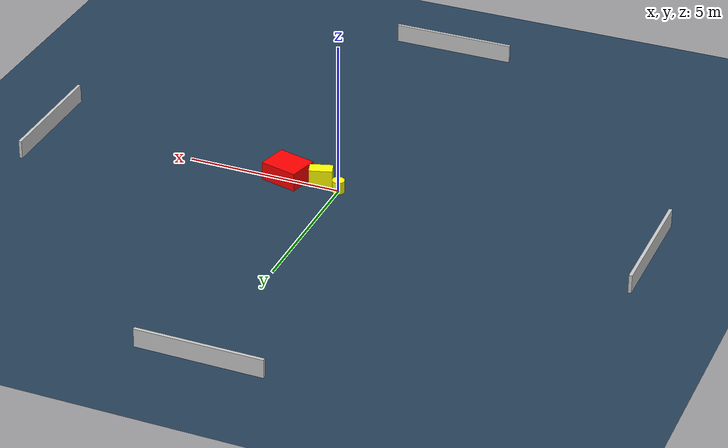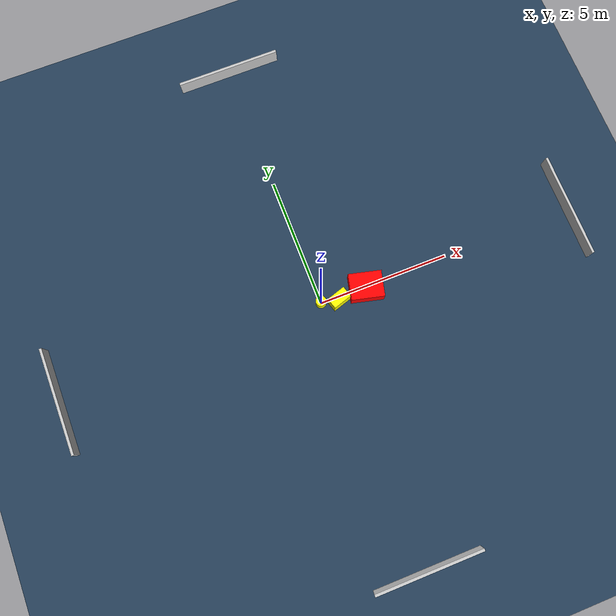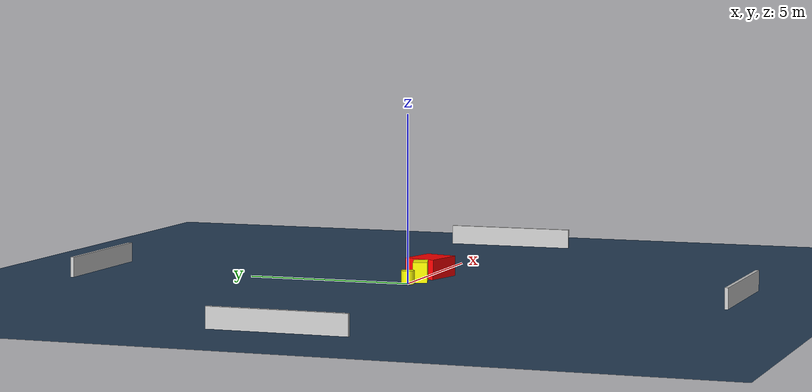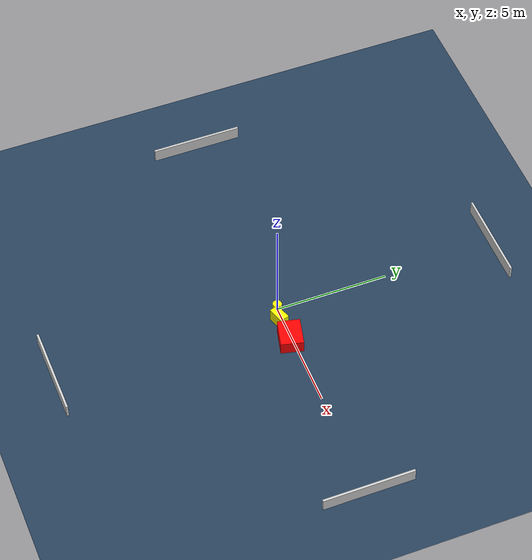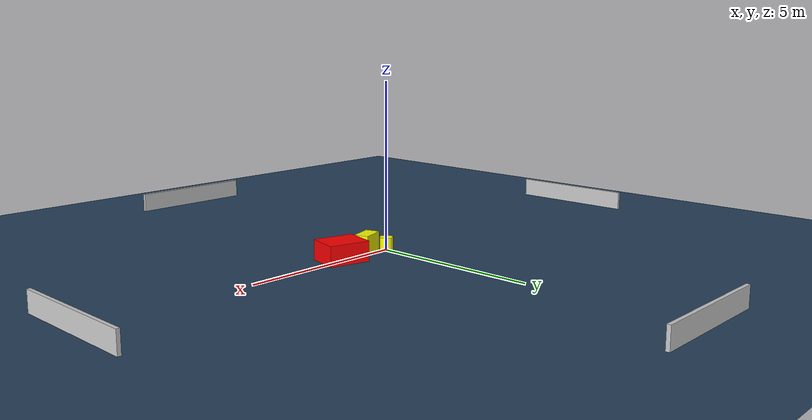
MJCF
<?xml version="1.0" ?>
<mujoco model="generated_environment">
  <option timestep="0.01" integrator="RK4" cone="elliptic"/>
  <default>
    <geom density="1"/>
  </default>
  <asset>
    <texture builtin="gradient" height="3072" name="skybox" rgb1="0.3 0.5 0.7" rgb2="0 0 0" type="skybox" width="512"/>
    <texture builtin="checker" height="300" name="groundplane" rgb1="0.2 0.3 0.4" rgb2="0.1 0.2 0.3" type="2d" width="300"/>
    <material name="groundplane" reflectance="0.2" texrepeat="5 5" texture="groundplane"/>
  </asset>
  <worldbody>
    <light dir="0 0 -1" directional="true" pos="0 0 1.5"/>
    <geom condim="3" friction="0.5 0.005 0.001" material="groundplane" name="floor" pos="0 0 0" size="0 0 0.05" type="plane"/>
    <body name="walls">
      <geom name="wall_1" condim="4" pos="-10.0 0.0 0.3" rgba="0.800000011920929 0.800000011920929 0.800000011920929 1.0" size="0.05 2.0 0.3" type="box"/>
      <geom name="wall_2" condim="4" pos="10.0 0.0 0.3" rgba="0.800000011920929 0.800000011920929 0.800000011920929 1.0" size="0.05 2.0 0.3" type="box"/>
      <geom name="wall_3" condim="4" pos="0.0 -10.0 0.3" rgba="0.800000011920929 0.800000011920929 0.800000011920929 1.0" size="2.0 0.05 0.3" type="box"/>
      <geom name="wall_4" condim="4" pos="0.0 10.0 0.3" rgba="0.800000011920929 0.800000011920929 0.800000011920929 1.0" size="2.0 0.05 0.3" type="box"/>
    </body>
    <body name="robot">
      <joint name="joint_x" type="slide" pos="0 0 0" axis="1 0 0"/>
      <joint name="joint_y" type="slide" pos="0 0 0" axis="0 1 0"/>
      <geom name="robot" type="cylinder" pos="0.0 0.0 0.2" size="0.2 0.2 0.0" mass="5.0" friction="1.0 0.005 0.0001" condim="4" rgba="1.0 1.0 0.0 1.0"/>
    </body>
    <body name="obstacle_1_movable">
      <geom name="obstacle_1_movable" condim="4" pos="0.6508631112484813 -0.16225256822409265 0.3" euler="0 0 197.1625022938546" friction="0.0 0.005 0.001" rgba="1.0 1.0 0.0 1.0" size="0.36701525601940566 0.21214515904848164 0.3" type="box" mass="0.1"/>
      <joint type="free"/>
    </body>
    <body name="obstacle_2_static">
      <geom name="obstacle_2_static" condim="4" pos="1.7459699955216215 -0.09131489962716414 0.3" euler="0 0 346.12978919934" friction="0.0 0.005 0.001" rgba="1.0 0.0 0.0 1.0" size="0.6184421500269639 0.49149637550678354 0.3" type="box"/>
    </body>
  </worldbody>
  <actuator>
    <motor name="actuator_x" joint="joint_x" gear="1" ctrlrange="-1 1"/>
    <motor name="actuator_y" joint="joint_y" gear="1" ctrlrange="-1 1"/>
  </actuator>
</mujoco>
